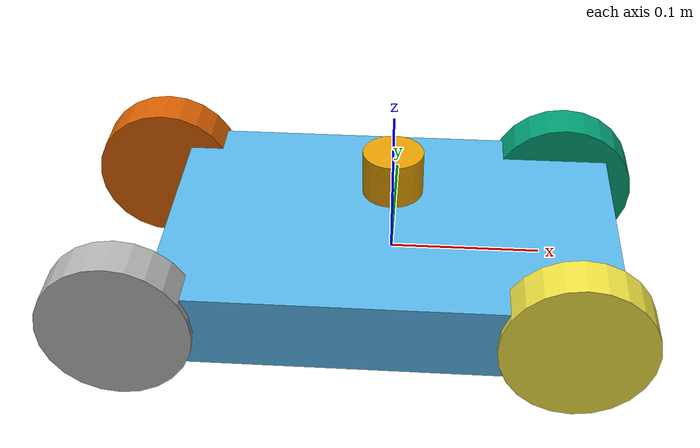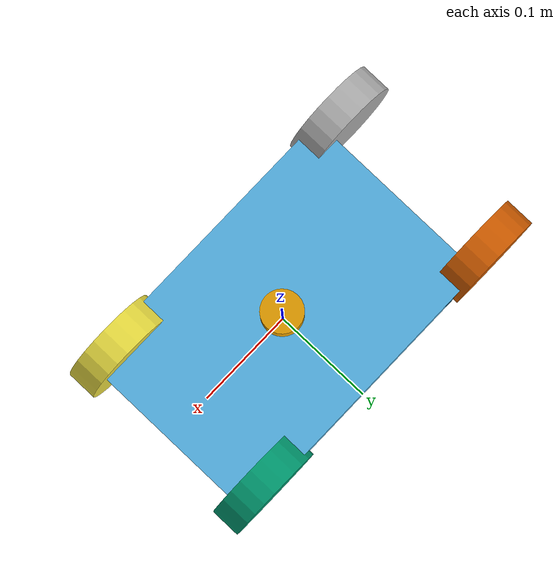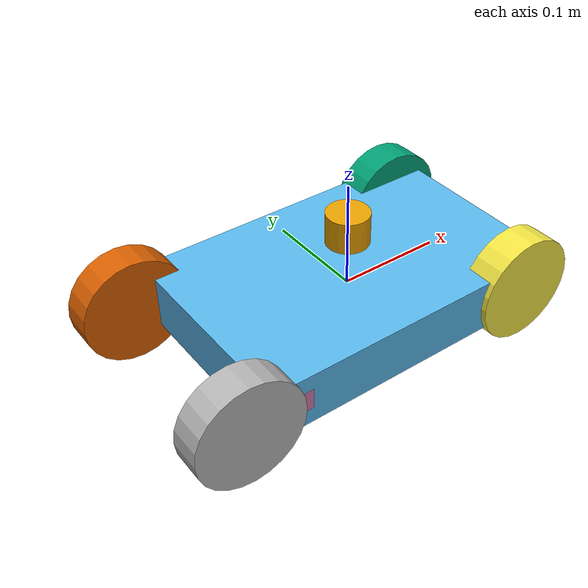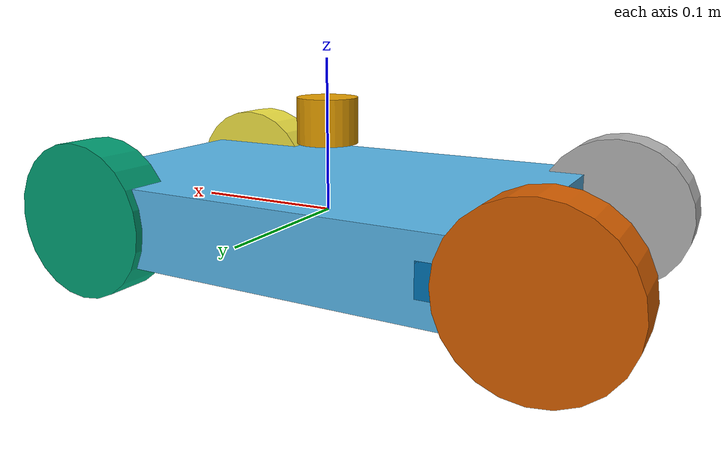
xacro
<?xml version="1.0"?>
<robot xmlns:xacro="http://www.ros.org/wiki/xacro" name="reconfig_robot">
<xacro:include filename="reconfig_robot.ros2_control.xacro"/>
<xacro:include filename="reconfig_robot.gazebo.xacro"/>
<xacro:include filename="lidar.xacro"/>
    <xacro:macro name="fixed_wheel" params="prefix parent_link x y z">

        <link name="${prefix}_wheel">
            <visual>
            <geometry>
                <cylinder radius="0.05" length="0.03"/>
            </geometry>
            </visual>
            <collision>
            <geometry>
                <cylinder radius="0.05" length="0.03"/>
            </geometry>
            </collision>
            <inertial>
            <mass value="0.2"/>
            <inertia ixx="0.0001" iyy="0.0001" izz="0.0001" ixy="0" ixz="0" iyz="0"/>
            </inertial>
        </link>

        <joint name="${prefix}_wheel_joint" type="continuous">
            <parent link="${parent_link}"/>
            <child link="${prefix}_wheel"/>
            <origin xyz="${x} ${y} ${z}" rpy="1.5708 0 0"/>
            <axis xyz="0 0 1"/>
        </joint>

    </xacro:macro>

    <link name="chassis_link">
        <visual>
            <geometry>
            <box size="0.30 0.20 0.05"/>
            </geometry>
        </visual>
        <collision>
            <geometry>
            <box size="0.30 0.20 0.05"/>
            </geometry>
        </collision>
        <inertial>
            <mass value="2.0"/>
            <inertia ixx="0.01" iyy="0.01" izz="0.01" ixy="0" ixz="0" iyz="0"/>
        </inertial>
    </link>

    <xacro:fixed_wheel prefix="front_left" parent_link="chassis_link" x="0.12" y="0.09" z="0"/>
    <xacro:fixed_wheel prefix="front_right" parent_link="chassis_link" x="0.12" y="-0.09" z="0"/>

    <xacro:macro name="folding_wheel" params="prefix parent_link x y z fold_axis_sign">

        <!-- the small intermediate link the fold joint rotates -->
        <link name="${prefix}_fold_arm">
            <visual>
            <geometry>
                <box size="0.02 0.02 0.02"/>
            </geometry>
            </visual>
            <inertial>
            <mass value="0.05"/>
            <inertia ixx="0.00001" iyy="0.00001" izz="0.00001" ixy="0" ixz="0" iyz="0"/>
            </inertial>
        </link>

        <joint name="${prefix}_fold_joint" type="revolute">
            <parent link="${parent_link}"/>
            <child link="${prefix}_fold_arm"/>
            <origin xyz="${x} ${y} ${z}" rpy="0 0 0"/>
            <axis xyz="${fold_axis_sign} 0 0"/>
            <limit lower="0" upper="1.5708" effort="10" velocity="1"/>
        </joint>

        <link name="${prefix}_wheel">
            <visual>
            <geometry>
                <cylinder radius="0.05" length="0.03"/>
            </geometry>
            </visual>
            <collision>
            <geometry>
                <cylinder radius="0.05" length="0.03"/>
            </geometry>
            </collision>
            <inertial>
            <mass value="0.2"/>
            <inertia ixx="0.0001" iyy="0.0001" izz="0.0001" ixy="0" ixz="0" iyz="0"/>
            </inertial>
        </link>

        <joint name="${prefix}_spin_joint" type="continuous">
            <parent link="${prefix}_fold_arm"/>
            <child link="${prefix}_wheel"/>
            <origin xyz="-0.05 0 0" rpy="1.5708 0 0"/>
            <axis xyz="0 0 1"/>
        </joint>

    </xacro:macro>

    <xacro:folding_wheel prefix="rear_left" parent_link="chassis_link" x="-0.12" y="0.09" z="0" fold_axis_sign="1"/>
    <xacro:folding_wheel prefix="rear_right" parent_link="chassis_link" x="-0.12" y="-0.09" z="0" fold_axis_sign="-1"/>

    <link name="caster_wheel">
        <visual>
            <geometry>
                <sphere radius="0.02"/>
            </geometry>
        </visual>
        <collision>
            <geometry>
                <sphere radius="0.02"/>
            </geometry>
        </collision>
        <inertial>
            <mass value="0.05"/>
            <inertia ixx="0.00001" iyy="0.00001" izz="0.00001" ixy="0" ixz="0" iyz="0"/>
        </inertial>
    </link>

    <joint name="caster_joint" type="fixed">
        <parent link="chassis_link"/>
        <child link="caster_wheel"/>
        <origin xyz="-0.12 0 -0.03" rpy="0 0 0"/>
    </joint>

</robot>

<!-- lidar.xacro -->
<robot xmlns:xacro="http://www.ros.org/wiki/xacro">

  <link name="lidar_link">
    <visual>
      <geometry>
        <cylinder radius="0.02" length="0.03"/>
      </geometry>
    </visual>
    <collision>
      <geometry>
        <cylinder radius="0.02" length="0.03"/>
      </geometry>
    </collision>
    <inertial>
      <mass value="0.05"/>
      <inertia ixx="0.00001" iyy="0.00001" izz="0.00001" ixy="0" ixz="0" iyz="0"/>
    </inertial>
  </link>

  <joint name="lidar_joint" type="fixed">
    <parent link="chassis_link"/>
    <child link="lidar_link"/>
    <origin xyz="0 0 0.06" rpy="0 0 0"/>
  </joint>

  <gazebo reference="lidar_link">
    <sensor type="ray" name="lidar_sensor">
      <pose>0 0 0 0 0 0</pose>
      <visualize>true</visualize>
      <update_rate>10</update_rate>
      <ray>
        <scan>
          <horizontal>
            <samples>360</samples>
            <resolution>1</resolution>
            <min_angle>-3.14159</min_angle>
            <max_angle>3.14159</max_angle>
          </horizontal>
        </scan>
        <range>
          <min>0.10</min>
          <max>10.0</max>
          <resolution>0.01</resolution>
        </range>
      </ray>
      <plugin name="lidar_plugin" filename="libgazebo_ros_ray_sensor.so">
        <ros>
          <namespace>/</namespace>
          <remapping>~/out:=scan</remapping>
        </ros>
        <output_type>sensor_msgs/LaserScan</output_type>
        <frame_name>lidar_link</frame_name>
      </plugin>
    </sensor>
  </gazebo>

</robot>
